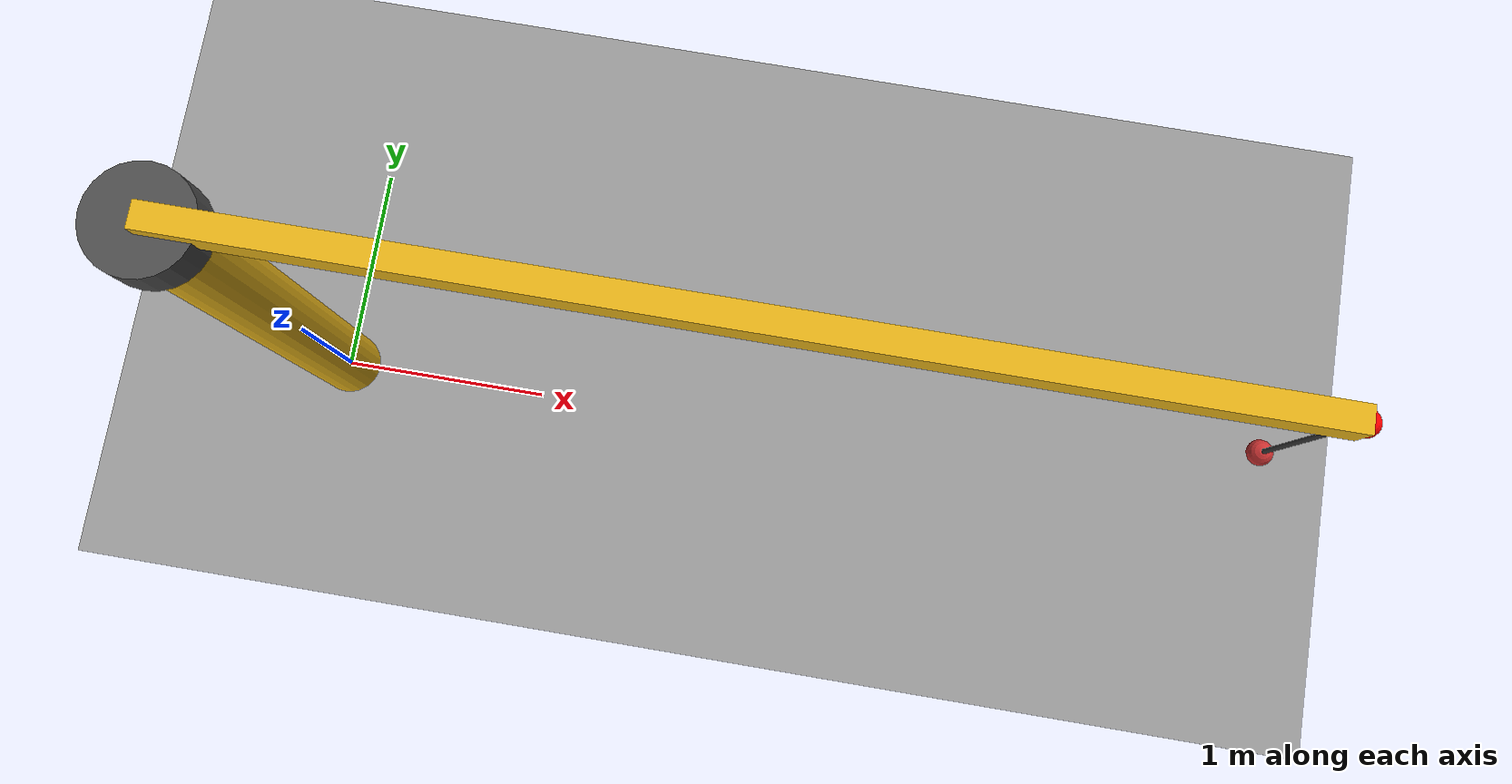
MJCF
<mujoco model="simple_crane">

  <compiler angle="radian"/>
  <option timestep="0.002" gravity="0 0 -9.81"/>

  <default>
    <joint damping="50"/>
    <geom rgba="0.6 0.6 0.6 1"/>
  </default>

  <asset>
    <texture name="grid" type="2d" builtin="checker" rgb1="0.9 0.9 0.9" rgb2="0.7 0.7 0.7" width="512" height="512"/>
    <material name="ground" texture="grid" texrepeat="5 5"/>
  </asset>

  <worldbody>
    <light pos="0 0 6" dir="0 0 -1" diffuse="0.8 0.8 0.8"/>
    <geom type="plane" size="10 10 0.1" material="ground"/>

    <!-- ─── TOWER (fixed to world) ─── -->
    <body name="tower" pos="0 0 0">
      <geom type="cylinder" size="0.15 1.5" pos="0 0 1.5" rgba="0.9 0.7 0.1 1"/>

      <!-- ─── SLEW: rotates the whole upper structure around vertical axis ─── -->
      <body name="slew_platform" pos="0 0 3.0">
        <joint name="slew" type="hinge" axis="0 0 1" range="-3.14 3.14"/>
        <geom type="cylinder" size="0.2 0.1" rgba="0.3 0.3 0.3 1"/>

        <!-- ─── LUFF: tilts the boom up and down ─── -->
        <body name="boom" pos="0 0 0.1">
          <joint name="luff" type="hinge" axis="0 1 0" range="0 1.2"/>
          <geom type="box" size="2.0 0.05 0.08" pos="2.0 0 0" rgba="0.9 0.7 0.1 1"/>

          <!-- ─── HOIST: cable slides down from boom tip ─── -->
          <body name="trolley" pos="4.0 0 0">
            <geom type="sphere" size="0.05" rgba="1 0 0 1"/>

            <body name="hook_carrier" pos="0 0 0">
              <joint name="hoist" type="slide" axis="0 0 -1" range="0 2.5"/>
              <geom name="cable" type="cylinder" size="0.01 0.5" pos="0 0 -0.5" rgba="0.2 0.2 0.2 1"/>

              <!-- ─── HOOK + LOAD ─── -->
              <body name="hook" pos="0 0 -1.0">
                <geom type="sphere" size="0.05" rgba="0.8 0.2 0.2 1"/>
                <inertial pos="0 0 0" mass="50" diaginertia="0.1 0.1 0.1"/>
              </body>
            </body>
          </body>
        </body>
      </body>
    </body>
  </worldbody>

  <actuator>
    <!-- slew stays as torque motor (you're commanding it directly) -->
    <motor name="slew_motor" joint="slew" gear="500" ctrllimited="true" ctrlrange="-1 1"/>

    <!-- luff and hoist become position servos that hold where you tell them -->
    <position name="luff_servo" joint="luff" kp="5000" ctrlrange="0 1.2"/>
    <position name="hoist_servo" joint="hoist" kp="10000" ctrlrange="0 2.5"/>
  </actuator>

  <sensor>
    <jointpos name="slew_angle" joint="slew"/>
    <jointpos name="luff_angle" joint="luff"/>
    <jointpos name="hoist_pos"  joint="hoist"/>
    <jointvel name="slew_vel"   joint="slew"/>
    <jointvel name="luff_vel"   joint="luff"/>
    <jointvel name="hoist_vel"  joint="hoist"/>
  </sensor>

</mujoco>
